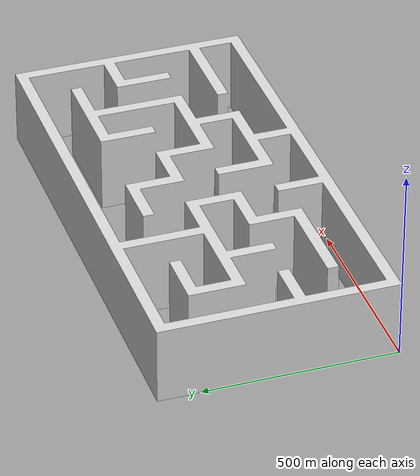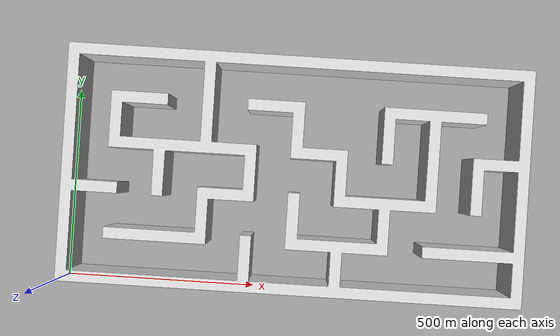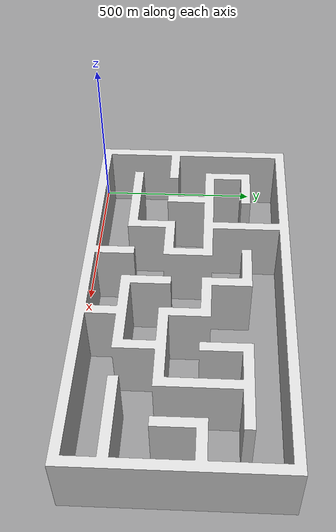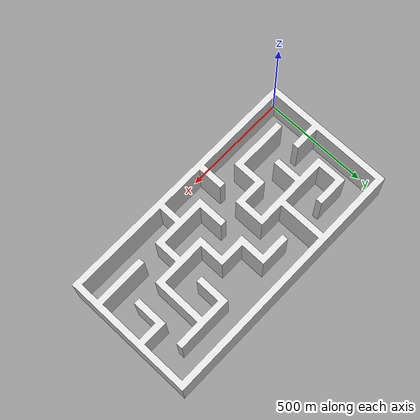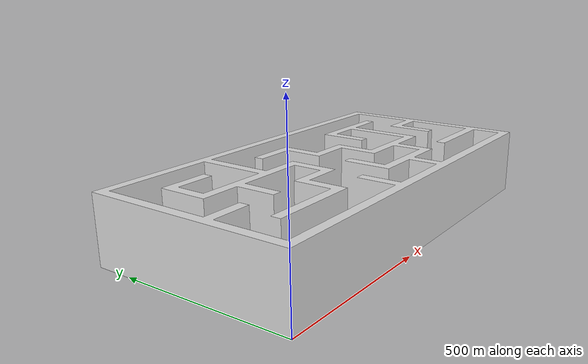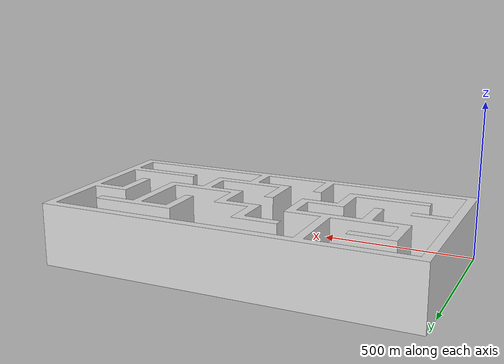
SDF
<?xml version="1.0" ?>
<sdf version="1.9">
  <model name="maze_world"> <static>true</static>
    <link name="body">
      <visual name="visual">
        <geometry>
          <mesh><uri>model://maze_world/meshes/maze.dae</uri></mesh>
        </geometry>
      </visual>
      <collision name="collision">
        <geometry>
          <mesh><uri>model://maze_world/meshes/maze.dae</uri></mesh>
        </geometry>
      </collision>
    </link>
  </model>
</sdf>
